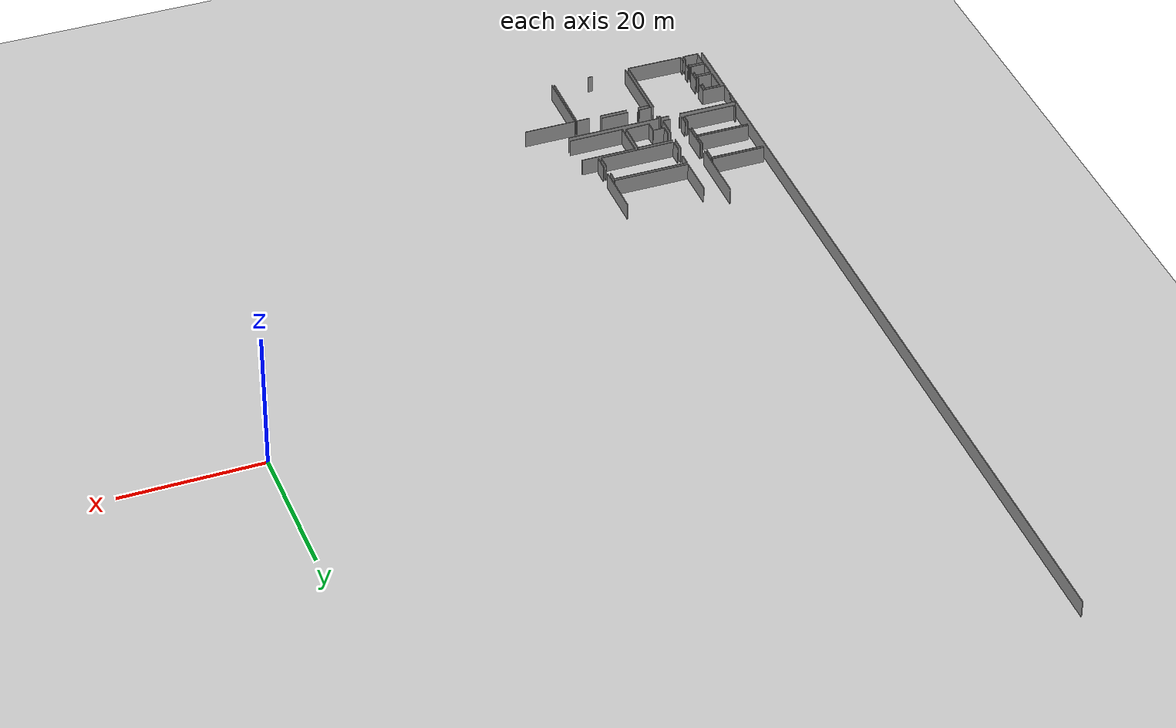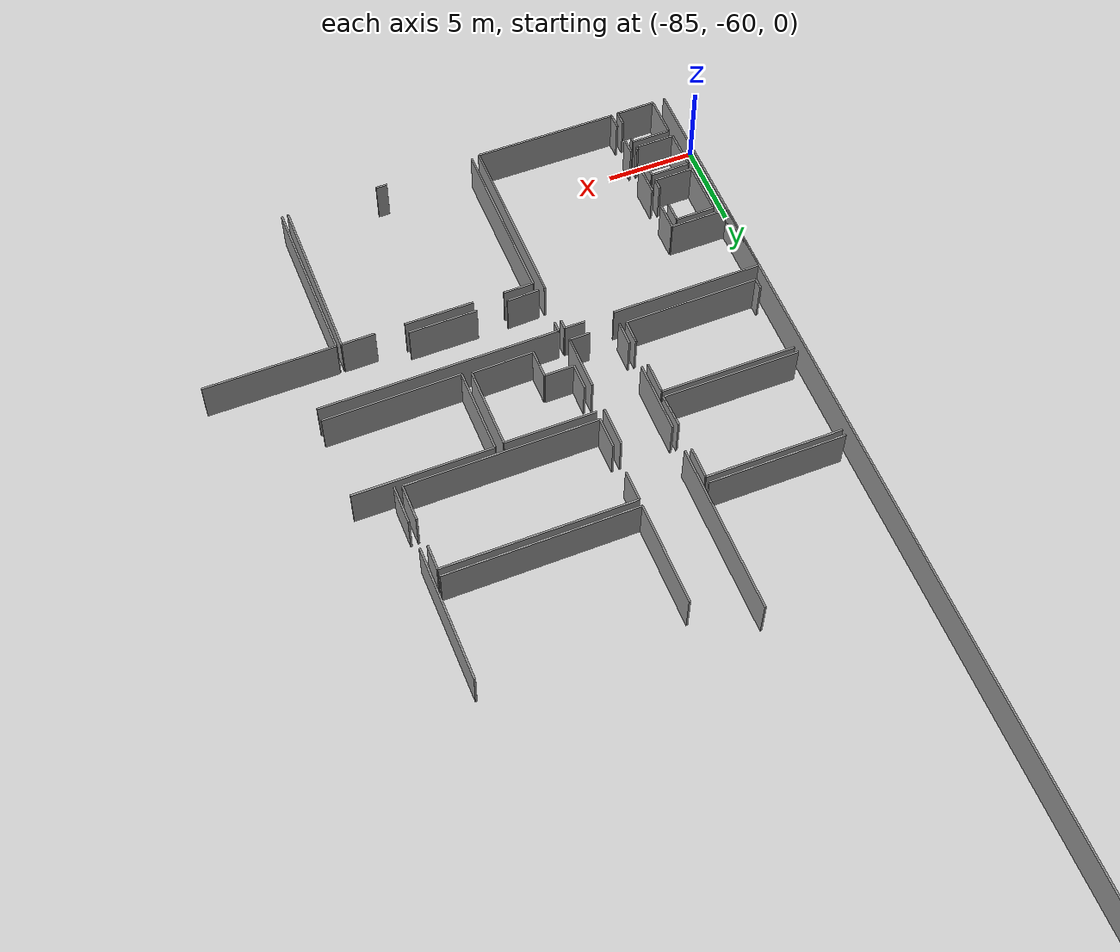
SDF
<sdf version="1.6">
 <world name="default">
  <model name="ground_plane">
   <static>1</static>
   <link name="link">
    <collision name="collision">
     <geometry><plane><normal>0 0 1</normal><size>100 100</size></plane></geometry>
     <surface><friction><ode><mu>100</mu><mu2>50</mu2></ode></friction></surface>
    </collision>
    <visual name="visual">
     <cast_shadows>0</cast_shadows>
     <geometry><plane><normal>0 0 1</normal><size>100 100</size></plane></geometry>
     <material>
      <script><uri>file://media/materials/scripts/gazebo.material</uri><name>Gazebo/Grey</name></script>
     </material>
    </visual>
   </link>
  </model>
  <model name="0510045904_A_40_1_102">
   <static>1</static>
   <link name="Wall_320">
    <collision name="Wall_320_Collision">
     <geometry><box><size>1.40160219381 0.1 2.5</size></box></geometry>
     <pose>0.700801096906 0 1.25 0 0 0</pose>
    </collision>
    <visual name="Wall_320_Visual">
     <pose>0.700801096906 0 1.25 0 0 0</pose>
     <geometry><box><size>1.40160219381 0.1 2.5</size></box></geometry>
     <material>
      <script><uri>file://media/materials/scripts/gazebo.material</uri><name>Gazebo/Grey</name></script>
      <ambient>1 1 1 1</ambient>
     </material>
    </visual>
    <pose>8.51447941397 -111.261061104 0 0 0 1.57079632679</pose>
   </link>
   <link name="Wall_321">
    <collision name="Wall_321_Collision">
     <geometry><box><size>4.06261505453 0.1 2.5</size></box></geometry>
     <pose>2.03130752726 0 1.25 0 0 0</pose>
    </collision>
    <visual name="Wall_321_Visual">
     <pose>2.03130752726 0 1.25 0 0 0</pose>
     <geometry><box><size>4.06261505453 0.1 2.5</size></box></geometry>
     <material>
      <script><uri>file://media/materials/scripts/gazebo.material</uri><name>Gazebo/Grey</name></script>
      <ambient>1 1 1 1</ambient>
     </material>
    </visual>
    <pose>8.51447941397 -108.253456397 0 0 0 1.57079632679</pose>
   </link>
   <link name="Wall_322">
    <collision name="Wall_322_Collision">
     <geometry><box><size>9.676641233 0.1 2.5</size></box></geometry>
     <pose>4.8383206165 0 1.25 0 0 0</pose>
    </collision>
    <visual name="Wall_322_Visual">
     <pose>4.8383206165 0 1.25 0 0 0</pose>
     <geometry><box><size>9.676641233 0.1 2.5</size></box></geometry>
     <material>
      <script><uri>file://media/materials/scripts/gazebo.material</uri><name>Gazebo/Grey</name></script>
      <ambient>1 1 1 1</ambient>
     </material>
    </visual>
    <pose>8.51447941397 -102.640445872 0 0 0 1.57079632679</pose>
   </link>
   <link name="Wall_326">
    <collision name="Wall_326_Collision">
     <geometry><box><size>2.26541571978 0.1 2.5</size></box></geometry>
     <pose>1.13270785989 0 1.25 0 0 0</pose>
    </collision>
    <visual name="Wall_326_Visual">
     <pose>1.13270785989 0 1.25 0 0 0</pose>
     <geometry><box><size>2.26541571978 0.1 2.5</size></box></geometry>
     <material>
      <script><uri>file://media/materials/scripts/gazebo.material</uri><name>Gazebo/Grey</name></script>
      <ambient>1 1 1 1</ambient>
     </material>
    </visual>
    <pose>11.3489151548 -104.253304049 0 0 0 -1.57079632679</pose>
   </link>
   <link name="Wall_327">
    <collision name="Wall_327_Collision">
     <geometry><box><size>3.13862404306 0.1 2.5</size></box></geometry>
     <pose>1.56931202153 0 1.25 0 0 0</pose>
    </collision>
    <visual name="Wall_327_Visual">
     <pose>1.56931202153 0 1.25 0 0 0</pose>
     <geometry><box><size>3.13862404306 0.1 2.5</size></box></geometry>
     <material>
      <script><uri>file://media/materials/scripts/gazebo.material</uri><name>Gazebo/Grey</name></script>
      <ambient>1 1 1 1</ambient>
     </material>
    </visual>
    <pose>11.3489151548 -108.112280524 0 0 0 -1.57079632679</pose>
   </link>
   <link name="Wall_328">
    <collision name="Wall_328_Collision">
     <geometry><box><size>1.14900321001 0.1 2.5</size></box></geometry>
     <pose>0.574501605003 0 1.25 0 0 0</pose>
    </collision>
    <visual name="Wall_328_Visual">
     <pose>0.574501605003 0 1.25 0 0 0</pose>
     <geometry><box><size>1.14900321001 0.1 2.5</size></box></geometry>
     <material>
      <script><uri>file://media/materials/scripts/gazebo.material</uri><name>Gazebo/Grey</name></script>
      <ambient>1 1 1 1</ambient>
     </material>
    </visual>
    <pose>11.3489151548 -111.250904567 0 0 0 -3.13275310483</pose>
   </link>
   <link name="Wall_329">
    <collision name="Wall_329_Collision">
     <geometry><box><size>7.67047113639 0.1 2.5</size></box></geometry>
     <pose>3.83523556819 0 1.25 0 0 0</pose>
    </collision>
    <visual name="Wall_329_Visual">
     <pose>3.83523556819 0 1.25 0 0 0</pose>
     <geometry><box><size>7.67047113639 0.1 2.5</size></box></geometry>
     <material>
      <script><uri>file://media/materials/scripts/gazebo.material</uri><name>Gazebo/Grey</name></script>
      <ambient>1 1 1 1</ambient>
     </material>
    </visual>
    <pose>8.14681275153 -100.485228586 0 0 0 3.14159265359</pose>
   </link>
   <link name="Wall_338">
    <collision name="Wall_338_Collision">
     <geometry><box><size>7.72760166059 0.1 2.5</size></box></geometry>
     <pose>3.8638008303 0 1.25 0 0 0</pose>
    </collision>
    <visual name="Wall_338_Visual">
     <pose>3.8638008303 0 1.25 0 0 0</pose>
     <geometry><box><size>7.72760166059 0.1 2.5</size></box></geometry>
     <material>
      <script><uri>file://media/materials/scripts/gazebo.material</uri><name>Gazebo/Grey</name></script>
      <ambient>1 1 1 1</ambient>
     </material>
    </visual>
    <pose>8.2260337451 -106.089606053 0 0 0 3.14159265359</pose>
   </link>
   <link name="Wall_339">
    <collision name="Wall_339_Collision">
     <geometry><box><size>7.65675981058 0.1 2.5</size></box></geometry>
     <pose>3.82837990529 0 1.25 0 0 0</pose>
    </collision>
    <visual name="Wall_339_Visual">
     <pose>3.82837990529 0 1.25 0 0 0</pose>
     <geometry><box><size>7.65675981058 0.1 2.5</size></box></geometry>
     <material>
      <script><uri>file://media/materials/scripts/gazebo.material</uri><name>Gazebo/Grey</name></script>
      <ambient>1 1 1 1</ambient>
     </material>
    </visual>
    <pose>0.498432084502 -100.837406528 0 0 0 0.0</pose>
   </link>
   <link name="Wall_340">
    <collision name="Wall_340_Collision">
     <geometry><box><size>1.80024629604 0.1 2.5</size></box></geometry>
     <pose>0.900123148019 0 1.25 0 0 0</pose>
    </collision>
    <visual name="Wall_340_Visual">
     <pose>0.900123148019 0 1.25 0 0 0</pose>
     <geometry><box><size>1.80024629604 0.1 2.5</size></box></geometry>
     <material>
      <script><uri>file://media/materials/scripts/gazebo.material</uri><name>Gazebo/Grey</name></script>
      <ambient>1 1 1 1</ambient>
     </material>
    </visual>
    <pose>8.15519189508 -100.837406528 0 0 0 -1.57079632679</pose>
   </link>
   <link name="Wall_341">
    <collision name="Wall_341_Collision">
     <geometry><box><size>1.87801085656 0.1 2.5</size></box></geometry>
     <pose>0.939005428281 0 1.25 0 0 0</pose>
    </collision>
    <visual name="Wall_341_Visual">
     <pose>0.939005428281 0 1.25 0 0 0</pose>
     <geometry><box><size>1.87801085656 0.1 2.5</size></box></geometry>
     <material>
      <script><uri>file://media/materials/scripts/gazebo.material</uri><name>Gazebo/Grey</name></script>
      <ambient>1 1 1 1</ambient>
     </material>
    </visual>
    <pose>8.15519189508 -104.212931812 0 0 0 -1.53306562836</pose>
   </link>
   <link name="Wall_342">
    <collision name="Wall_342_Collision">
     <geometry><box><size>0.617771401729 0.1 2.5</size></box></geometry>
     <pose>0.308885700865 0 1.25 0 0 0</pose>
    </collision>
    <visual name="Wall_342_Visual">
     <pose>0.308885700865 0 1.25 0 0 0</pose>
     <geometry><box><size>0.617771401729 0.1 2.5</size></box></geometry>
     <material>
      <script><uri>file://media/materials/scripts/gazebo.material</uri><name>Gazebo/Grey</name></script>
      <ambient>1 1 1 1</ambient>
     </material>
    </visual>
    <pose>0.567496540429 -111.228560184 0 0 0 1.57079632679</pose>
   </link>
   <link name="Wall_343">
    <collision name="Wall_343_Collision">
     <geometry><box><size>7.57957012454 0.1 2.5</size></box></geometry>
     <pose>3.78978506227 0 1.25 0 0 0</pose>
    </collision>
    <visual name="Wall_343_Visual">
     <pose>3.78978506227 0 1.25 0 0 0</pose>
     <geometry><box><size>7.57957012454 0.1 2.5</size></box></geometry>
     <material>
      <script><uri>file://media/materials/scripts/gazebo.material</uri><name>Gazebo/Grey</name></script>
      <ambient>1 1 1 1</ambient>
     </material>
    </visual>
    <pose>0.567496540429 -106.420201353 0 0 0 0.0</pose>
   </link>
   <link name="Wall_344">
    <collision name="Wall_344_Collision">
     <geometry><box><size>1.83655591809 0.1 2.5</size></box></geometry>
     <pose>0.918277959044 0 1.25 0 0 0</pose>
    </collision>
    <visual name="Wall_344_Visual">
     <pose>0.918277959044 0 1.25 0 0 0</pose>
     <geometry><box><size>1.83655591809 0.1 2.5</size></box></geometry>
     <material>
      <script><uri>file://media/materials/scripts/gazebo.material</uri><name>Gazebo/Grey</name></script>
      <ambient>1 1 1 1</ambient>
     </material>
    </visual>
    <pose>8.14706666497 -106.420201353 0 0 0 -1.57079632679</pose>
   </link>
   <link name="Wall_345">
    <collision name="Wall_345_Collision">
     <geometry><box><size>1.34828037122 0.1 2.5</size></box></geometry>
     <pose>0.674140185611 0 1.25 0 0 0</pose>
    </collision>
    <visual name="Wall_345_Visual">
     <pose>0.674140185611 0 1.25 0 0 0</pose>
     <geometry><box><size>1.34828037122 0.1 2.5</size></box></geometry>
     <material>
      <script><uri>file://media/materials/scripts/gazebo.material</uri><name>Gazebo/Grey</name></script>
      <ambient>1 1 1 1</ambient>
     </material>
    </visual>
    <pose>8.14706666497 -109.840161489 0 0 0 -1.57079632679</pose>
   </link>
   <link name="Wall_346">
    <collision name="Wall_346_Collision">
     <geometry><box><size>7.57967629604 0.1 2.5</size></box></geometry>
     <pose>3.78983814802 0 1.25 0 0 0</pose>
    </collision>
    <visual name="Wall_346_Visual">
     <pose>3.78983814802 0 1.25 0 0 0</pose>
     <geometry><box><size>7.57967629604 0.1 2.5</size></box></geometry>
     <material>
      <script><uri>file://media/materials/scripts/gazebo.material</uri><name>Gazebo/Grey</name></script>
      <ambient>1 1 1 1</ambient>
     </material>
    </visual>
    <pose>8.14706666497 -111.18844186 0 0 0 -3.13629974801</pose>
   </link>
   <link name="Wall_347">
    <collision name="Wall_347_Collision">
     <geometry><box><size>5.85092741884 0.1 2.5</size></box></geometry>
     <pose>2.92546370942 0 1.25 0 0 0</pose>
    </collision>
    <visual name="Wall_347_Visual">
     <pose>2.92546370942 0 1.25 0 0 0</pose>
     <geometry><box><size>5.85092741884 0.1 2.5</size></box></geometry>
     <material>
      <script><uri>file://media/materials/scripts/gazebo.material</uri><name>Gazebo/Grey</name></script>
      <ambient>1 1 1 1</ambient>
     </material>
    </visual>
    <pose>11.8029123872 -100.459329415 0 0 0 1.57079632679</pose>
   </link>
   <link name="Wall_352">
    <collision name="Wall_352_Collision">
     <geometry><box><size>10.7997090861 0.1 2.5</size></box></geometry>
     <pose>5.39985454305 0 1.25 0 0 0</pose>
    </collision>
    <visual name="Wall_352_Visual">
     <pose>5.39985454305 0 1.25 0 0 0</pose>
     <geometry><box><size>10.7997090861 0.1 2.5</size></box></geometry>
     <material>
      <script><uri>file://media/materials/scripts/gazebo.material</uri><name>Gazebo/Grey</name></script>
      <ambient>1 1 1 1</ambient>
     </material>
    </visual>
    <pose>22.6026127693 -100.445618089 0 0 0 -3.14032305185</pose>
   </link>
   <link name="Wall_353">
    <collision name="Wall_353_Collision">
     <geometry><box><size>1.78551931647 0.1 2.5</size></box></geometry>
     <pose>0.892759658233 0 1.25 0 0 0</pose>
    </collision>
    <visual name="Wall_353_Visual">
     <pose>0.892759658233 0 1.25 0 0 0</pose>
     <geometry><box><size>1.78551931647 0.1 2.5</size></box></geometry>
     <material>
      <script><uri>file://media/materials/scripts/gazebo.material</uri><name>Gazebo/Grey</name></script>
      <ambient>1 1 1 1</ambient>
     </material>
    </visual>
    <pose>11.7935175899 -106.019525944 0 0 0 1.57079632679</pose>
   </link>
   <link name="Wall_354">
    <collision name="Wall_354_Collision">
     <geometry><box><size>1.72229486968 0.1 2.5</size></box></geometry>
     <pose>0.861147434839 0 1.25 0 0 0</pose>
    </collision>
    <visual name="Wall_354_Visual">
     <pose>0.861147434839 0 1.25 0 0 0</pose>
     <geometry><box><size>1.72229486968 0.1 2.5</size></box></geometry>
     <material>
      <script><uri>file://media/materials/scripts/gazebo.material</uri><name>Gazebo/Grey</name></script>
      <ambient>1 1 1 1</ambient>
     </material>
    </visual>
    <pose>11.7935175899 -102.578998819 0 0 0 1.57079632679</pose>
   </link>
   <link name="Wall_355">
    <collision name="Wall_355_Collision">
     <geometry><box><size>10.7783716531 0.1 2.5</size></box></geometry>
     <pose>5.38918582655 0 1.25 0 0 0</pose>
    </collision>
    <visual name="Wall_355_Visual">
     <pose>5.38918582655 0 1.25 0 0 0</pose>
     <geometry><box><size>10.7783716531 0.1 2.5</size></box></geometry>
     <material>
      <script><uri>file://media/materials/scripts/gazebo.material</uri><name>Gazebo/Grey</name></script>
      <ambient>1 1 1 1</ambient>
     </material>
    </visual>
    <pose>11.7935175899 -100.85670395 0 0 0 0.0</pose>
   </link>
   <link name="Wall_356">
    <collision name="Wall_356_Collision">
     <geometry><box><size>1.42318483629 0.1 2.5</size></box></geometry>
     <pose>0.711592418145 0 1.25 0 0 0</pose>
    </collision>
    <visual name="Wall_356_Visual">
     <pose>0.711592418145 0 1.25 0 0 0</pose>
     <geometry><box><size>1.42318483629 0.1 2.5</size></box></geometry>
     <material>
      <script><uri>file://media/materials/scripts/gazebo.material</uri><name>Gazebo/Grey</name></script>
      <ambient>1 1 1 1</ambient>
     </material>
    </visual>
    <pose>22.571889243 -100.85670395 0 0 0 -1.57079632679</pose>
   </link>
   <link name="Wall_357">
    <collision name="Wall_357_Collision">
     <geometry><box><size>2.10341894448 0.1 2.5</size></box></geometry>
     <pose>1.05170947224 0 1.25 0 0 0</pose>
    </collision>
    <visual name="Wall_357_Visual">
     <pose>1.05170947224 0 1.25 0 0 0</pose>
     <geometry><box><size>2.10341894448 0.1 2.5</size></box></geometry>
     <material>
      <script><uri>file://media/materials/scripts/gazebo.material</uri><name>Gazebo/Grey</name></script>
      <ambient>1 1 1 1</ambient>
     </material>
    </visual>
    <pose>22.571889243 -103.899348712 0 0 0 -1.57079632679</pose>
   </link>
   <link name="Wall_358">
    <collision name="Wall_358_Collision">
     <geometry><box><size>10.778384681 0.1 2.5</size></box></geometry>
     <pose>5.38919234052 0 1.25 0 0 0</pose>
    </collision>
    <visual name="Wall_358_Visual">
     <pose>5.38919234052 0 1.25 0 0 0</pose>
     <geometry><box><size>10.778384681 0.1 2.5</size></box></geometry>
     <material>
      <script><uri>file://media/materials/scripts/gazebo.material</uri><name>Gazebo/Grey</name></script>
      <ambient>1 1 1 1</ambient>
     </material>
    </visual>
    <pose>22.571889243 -106.002767657 0 0 0 -3.1400378479</pose>
   </link>
   <link name="Wall_359">
    <collision name="Wall_359_Collision">
     <geometry><box><size>1.61361991697 0.1 2.5</size></box></geometry>
     <pose>0.806809958485 0 1.25 0 0 0</pose>
    </collision>
    <visual name="Wall_359_Visual">
     <pose>0.806809958485 0 1.25 0 0 0</pose>
     <geometry><box><size>1.61361991697 0.1 2.5</size></box></geometry>
     <material>
      <script><uri>file://media/materials/scripts/gazebo.material</uri><name>Gazebo/Grey</name></script>
      <ambient>1 1 1 1</ambient>
     </material>
    </visual>
    <pose>13.4363375525 -111.223481915 0 0 0 1.57079632679</pose>
   </link>
   <link name="Wall_360">
    <collision name="Wall_360_Collision">
     <geometry><box><size>1.66211738418 0.1 2.5</size></box></geometry>
     <pose>0.831058692092 0 1.25 0 0 0</pose>
    </collision>
    <visual name="Wall_360_Visual">
     <pose>0.831058692092 0 1.25 0 0 0</pose>
     <geometry><box><size>1.66211738418 0.1 2.5</size></box></geometry>
     <material>
      <script><uri>file://media/materials/scripts/gazebo.material</uri><name>Gazebo/Grey</name></script>
      <ambient>1 1 1 1</ambient>
     </material>
    </visual>
    <pose>13.4363375525 -109.609861998 0 0 0 3.14159265359</pose>
   </link>
   <link name="Wall_361">
    <collision name="Wall_361_Collision">
     <geometry><box><size>1.47828405297 0.1 2.5</size></box></geometry>
     <pose>0.739142026483 0 1.25 0 0 0</pose>
    </collision>
    <visual name="Wall_361_Visual">
     <pose>0.739142026483 0 1.25 0 0 0</pose>
     <geometry><box><size>1.47828405297 0.1 2.5</size></box></geometry>
     <material>
      <script><uri>file://media/materials/scripts/gazebo.material</uri><name>Gazebo/Grey</name></script>
      <ambient>1 1 1 1</ambient>
     </material>
    </visual>
    <pose>11.7742201683 -109.609861998 0 0 0 1.57079632679</pose>
   </link>
   <link name="Wall_362">
    <collision name="Wall_362_Collision">
     <geometry><box><size>5.12625845849 0.1 2.5</size></box></geometry>
     <pose>2.56312922925 0 1.25 0 0 0</pose>
    </collision>
    <visual name="Wall_362_Visual">
     <pose>2.56312922925 0 1.25 0 0 0</pose>
     <geometry><box><size>5.12625845849 0.1 2.5</size></box></geometry>
     <material>
      <script><uri>file://media/materials/scripts/gazebo.material</uri><name>Gazebo/Grey</name></script>
      <ambient>1 1 1 1</ambient>
     </material>
    </visual>
    <pose>11.7742201683 -106.518719768 0 0 0 0.0</pose>
   </link>
   <link name="Wall_363">
    <collision name="Wall_363_Collision">
     <geometry><box><size>4.64636205518 0.1 2.5</size></box></geometry>
     <pose>2.32318102759 0 1.25 0 0 0</pose>
    </collision>
    <visual name="Wall_363_Visual">
     <pose>2.32318102759 0 1.25 0 0 0</pose>
     <geometry><box><size>4.64636205518 0.1 2.5</size></box></geometry>
     <material>
      <script><uri>file://media/materials/scripts/gazebo.material</uri><name>Gazebo/Grey</name></script>
      <ambient>1 1 1 1</ambient>
     </material>
    </visual>
    <pose>16.9004786268 -106.518719768 0 0 0 -1.57079632679</pose>
   </link>
   <link name="Wall_364">
    <collision name="Wall_364_Collision">
     <geometry><box><size>3.4646333072 0.1 2.5</size></box></geometry>
     <pose>1.7323166536 0 1.25 0 0 0</pose>
    </collision>
    <visual name="Wall_364_Visual">
     <pose>1.7323166536 0 1.25 0 0 0</pose>
     <geometry><box><size>3.4646333072 0.1 2.5</size></box></geometry>
     <material>
      <script><uri>file://media/materials/scripts/gazebo.material</uri><name>Gazebo/Grey</name></script>
      <ambient>1 1 1 1</ambient>
     </material>
    </visual>
    <pose>16.9004786268 -111.165081824 0 0 0 -3.1247357882</pose>
   </link>
   <link name="Wall_367">
    <collision name="Wall_367_Collision">
     <geometry><box><size>2.18162428428 0.1 2.5</size></box></geometry>
     <pose>1.09081214214 0 1.25 0 0 0</pose>
    </collision>
    <visual name="Wall_367_Visual">
     <pose>1.09081214214 0 1.25 0 0 0</pose>
     <geometry><box><size>2.18162428428 0.1 2.5</size></box></geometry>
     <material>
      <script><uri>file://media/materials/scripts/gazebo.material</uri><name>Gazebo/Grey</name></script>
      <ambient>1 1 1 1</ambient>
     </material>
    </visual>
    <pose>22.9847524979 -106.075894727 0 0 0 1.57079632679</pose>
   </link>
   <link name="Wall_368">
    <collision name="Wall_368_Collision">
     <geometry><box><size>7.70881206597 0.1 2.5</size></box></geometry>
     <pose>3.85440603298 0 1.25 0 0 0</pose>
    </collision>
    <visual name="Wall_368_Visual">
     <pose>3.85440603298 0 1.25 0 0 0</pose>
     <geometry><box><size>7.70881206597 0.1 2.5</size></box></geometry>
     <material>
      <script><uri>file://media/materials/scripts/gazebo.material</uri><name>Gazebo/Grey</name></script>
      <ambient>1 1 1 1</ambient>
     </material>
    </visual>
    <pose>22.9847524979 -102.288267929 0 0 0 1.57079632679</pose>
   </link>
   <link name="Wall_376">
    <collision name="Wall_376_Collision">
     <geometry><box><size>4.87716937296 0.1 2.5</size></box></geometry>
     <pose>2.43858468648 0 1.25 0 0 0</pose>
    </collision>
    <visual name="Wall_376_Visual">
     <pose>2.43858468648 0 1.25 0 0 0</pose>
     <geometry><box><size>4.87716937296 0.1 2.5</size></box></geometry>
     <material>
      <script><uri>file://media/materials/scripts/gazebo.material</uri><name>Gazebo/Grey</name></script>
      <ambient>1 1 1 1</ambient>
     </material>
    </visual>
    <pose>17.4149072581 -111.297878553 0 0 0 1.57079632679</pose>
   </link>
   <link name="Wall_377">
    <collision name="Wall_377_Collision">
     <geometry><box><size>7.7903182805 0.1 2.5</size></box></geometry>
     <pose>3.89515914025 0 1.25 0 0 0</pose>
    </collision>
    <visual name="Wall_377_Visual">
     <pose>3.89515914025 0 1.25 0 0 0</pose>
     <geometry><box><size>7.7903182805 0.1 2.5</size></box></geometry>
     <material>
      <script><uri>file://media/materials/scripts/gazebo.material</uri><name>Gazebo/Grey</name></script>
      <ambient>1 1 1 1</ambient>
     </material>
    </visual>
    <pose>17.4149072581 -106.42070918 0 0 0 0.0</pose>
   </link>
   <link name="Wall_381">
    <collision name="Wall_381_Collision">
     <geometry><box><size>7.7308522812 0.1 2.5</size></box></geometry>
     <pose>3.8654261406 0 1.25 0 0 0</pose>
    </collision>
    <visual name="Wall_381_Visual">
     <pose>3.8654261406 0 1.25 0 0 0</pose>
     <geometry><box><size>7.7308522812 0.1 2.5</size></box></geometry>
     <material>
      <script><uri>file://media/materials/scripts/gazebo.material</uri><name>Gazebo/Grey</name></script>
      <ambient>1 1 1 1</ambient>
     </material>
    </visual>
    <pose>25.14555588 -111.241763683 0 0 0 -3.13433402787</pose>
   </link>
   <link name="Wall_651">
    <collision name="Wall_651_Collision">
     <geometry><box><size>0.580700039357 0.1 2.5</size></box></geometry>
     <pose>0.290350019678 0 1.25 0 0 0</pose>
    </collision>
    <visual name="Wall_651_Visual">
     <pose>0.290350019678 0 1.25 0 0 0</pose>
     <geometry><box><size>0.580700039357 0.1 2.5</size></box></geometry>
     <material>
      <script><uri>file://media/materials/scripts/gazebo.material</uri><name>Gazebo/Grey</name></script>
      <ambient>1 1 1 1</ambient>
     </material>
    </visual>
    <pose>11.6828113296 -112.582172737 0 0 0 1.57079632679</pose>
   </link>
   <link name="Wall_652">
    <collision name="Wall_652_Collision">
     <geometry><box><size>13.4434471289 0.1 2.5</size></box></geometry>
     <pose>6.72172356444 0 1.25 0 0 0</pose>
    </collision>
    <visual name="Wall_652_Visual">
     <pose>6.72172356444 0 1.25 0 0 0</pose>
     <geometry><box><size>13.4434471289 0.1 2.5</size></box></geometry>
     <material>
      <script><uri>file://media/materials/scripts/gazebo.material</uri><name>Gazebo/Grey</name></script>
      <ambient>1 1 1 1</ambient>
     </material>
    </visual>
    <pose>11.6828113296 -112.001472698 0 0 0 0.0</pose>
   </link>
   <link name="Wall_682">
    <collision name="Wall_682_Collision">
     <geometry><box><size>3.85669125395 0.1 2.5</size></box></geometry>
     <pose>1.92834562698 0 1.25 0 0 0</pose>
    </collision>
    <visual name="Wall_682_Visual">
     <pose>1.92834562698 0 1.25 0 0 0</pose>
     <geometry><box><size>3.85669125395 0.1 2.5</size></box></geometry>
     <material>
      <script><uri>file://media/materials/scripts/gazebo.material</uri><name>Gazebo/Grey</name></script>
      <ambient>1 1 1 1</ambient>
     </material>
    </visual>
    <pose>19.082610738 -114.833115391 0 0 0 3.14159265359</pose>
   </link>
   <link name="Wall_683">
    <collision name="Wall_683_Collision">
     <geometry><box><size>1.82450898326 0.1 2.5</size></box></geometry>
     <pose>0.912254491629 0 1.25 0 0 0</pose>
    </collision>
    <visual name="Wall_683_Visual">
     <pose>0.912254491629 0 1.25 0 0 0</pose>
     <geometry><box><size>1.82450898326 0.1 2.5</size></box></geometry>
     <material>
      <script><uri>file://media/materials/scripts/gazebo.material</uri><name>Gazebo/Grey</name></script>
      <ambient>1 1 1 1</ambient>
     </material>
    </visual>
    <pose>13.5064176622 -114.833115391 0 0 0 -3.11013547611</pose>
   </link>
   <link name="Wall_708">
    <collision name="Wall_708_Collision">
     <geometry><box><size>9.97879822768 0.1 2.5</size></box></geometry>
     <pose>4.98939911384 0 1.25 0 0 0</pose>
    </collision>
    <visual name="Wall_708_Visual">
     <pose>4.98939911384 0 1.25 0 0 0</pose>
     <geometry><box><size>9.97879822768 0.1 2.5</size></box></geometry>
     <material>
      <script><uri>file://media/materials/scripts/gazebo.material</uri><name>Gazebo/Grey</name></script>
      <ambient>1 1 1 1</ambient>
     </material>
    </visual>
    <pose>11.3161603209 -124.872598931 0 0 0 1.57079632679</pose>
   </link>
   <link name="Wall_709">
    <collision name="Wall_709_Collision">
     <geometry><box><size>0.52560082268 0.1 2.5</size></box></geometry>
     <pose>0.26280041134 0 1.25 0 0 0</pose>
    </collision>
    <visual name="Wall_709_Visual">
     <pose>0.26280041134 0 1.25 0 0 0</pose>
     <geometry><box><size>0.52560082268 0.1 2.5</size></box></geometry>
     <material>
      <script><uri>file://media/materials/scripts/gazebo.material</uri><name>Gazebo/Grey</name></script>
      <ambient>1 1 1 1</ambient>
     </material>
    </visual>
    <pose>11.3161603209 -112.566684017 0 0 0 1.57079632679</pose>
   </link>
   <link name="Wall_710">
    <collision name="Wall_710_Collision">
     <geometry><box><size>1.15022788731 0.1 2.5</size></box></geometry>
     <pose>0.575113943657 0 1.25 0 0 0</pose>
    </collision>
    <visual name="Wall_710_Visual">
     <pose>0.575113943657 0 1.25 0 0 0</pose>
     <geometry><box><size>1.15022788731 0.1 2.5</size></box></geometry>
     <material>
      <script><uri>file://media/materials/scripts/gazebo.material</uri><name>Gazebo/Grey</name></script>
      <ambient>1 1 1 1</ambient>
     </material>
    </visual>
    <pose>11.3161603209 -112.041083195 0 0 0 3.14159265359</pose>
   </link>
   <link name="Wall_711">
    <collision name="Wall_711_Collision">
     <geometry><box><size>8.51447941397 0.1 2.5</size></box></geometry>
     <pose>4.25723970698 0 1.25 0 0 0</pose>
    </collision>
    <visual name="Wall_711_Visual">
     <pose>4.25723970698 0 1.25 0 0 0</pose>
     <geometry><box><size>8.51447941397 0.1 2.5</size></box></geometry>
     <material>
      <script><uri>file://media/materials/scripts/gazebo.material</uri><name>Gazebo/Grey</name></script>
      <ambient>1 1 1 1</ambient>
     </material>
    </visual>
    <pose>8.51447941397 -112.041083195 0 0 0 3.14159265359</pose>
   </link>
   <link name="Wall_712">
    <collision name="Wall_712_Collision">
     <geometry><box><size>4.16265695025 0.1 2.5</size></box></geometry>
     <pose>2.08132847512 0 1.25 0 0 0</pose>
    </collision>
    <visual name="Wall_712_Visual">
     <pose>2.08132847512 0 1.25 0 0 0</pose>
     <geometry><box><size>4.16265695025 0.1 2.5</size></box></geometry>
     <material>
      <script><uri>file://media/materials/scripts/gazebo.material</uri><name>Gazebo/Grey</name></script>
      <ambient>1 1 1 1</ambient>
     </material>
    </visual>
    <pose>0.0 -112.041083195 0 0 0 -1.57079632679</pose>
   </link>
   <link name="Wall_713">
    <collision name="Wall_713_Collision">
     <geometry><box><size>3.28894080008 0.1 2.5</size></box></geometry>
     <pose>1.64447040004 0 1.25 0 0 0</pose>
    </collision>
    <visual name="Wall_713_Visual">
     <pose>1.64447040004 0 1.25 0 0 0</pose>
     <geometry><box><size>3.28894080008 0.1 2.5</size></box></geometry>
     <material>
      <script><uri>file://media/materials/scripts/gazebo.material</uri><name>Gazebo/Grey</name></script>
      <ambient>1 1 1 1</ambient>
     </material>
    </visual>
    <pose>0.0 -116.203740145 0 0 0 0.0</pose>
   </link>
   <link name="Wall_714">
    <collision name="Wall_714_Collision">
     <geometry><box><size>1.53592240405 0.1 2.5</size></box></geometry>
     <pose>0.767961202026 0 1.25 0 0 0</pose>
    </collision>
    <visual name="Wall_714_Visual">
     <pose>0.767961202026 0 1.25 0 0 0</pose>
     <geometry><box><size>1.53592240405 0.1 2.5</size></box></geometry>
     <material>
      <script><uri>file://media/materials/scripts/gazebo.material</uri><name>Gazebo/Grey</name></script>
      <ambient>1 1 1 1</ambient>
     </material>
    </visual>
    <pose>3.28894080008 -116.203740145 0 0 0 -1.57079632679</pose>
   </link>
   <link name="Wall_715">
    <collision name="Wall_715_Collision">
     <geometry><box><size>1.84315766755 0.1 2.5</size></box></geometry>
     <pose>0.921578833776 0 1.25 0 0 0</pose>
    </collision>
    <visual name="Wall_715_Visual">
     <pose>0.921578833776 0 1.25 0 0 0</pose>
     <geometry><box><size>1.84315766755 0.1 2.5</size></box></geometry>
     <material>
      <script><uri>file://media/materials/scripts/gazebo.material</uri><name>Gazebo/Grey</name></script>
      <ambient>1 1 1 1</ambient>
     </material>
    </visual>
    <pose>3.28894080008 -118.926453972 0 0 0 -1.57079632679</pose>
   </link>
   <link name="Wall_716">
    <collision name="Wall_716_Collision">
     <geometry><box><size>0.929069280282 0.1 2.5</size></box></geometry>
     <pose>0.464534640141 0 1.25 0 0 0</pose>
    </collision>
    <visual name="Wall_716_Visual">
     <pose>0.464534640141 0 1.25 0 0 0</pose>
     <geometry><box><size>0.929069280282 0.1 2.5</size></box></geometry>
     <material>
      <script><uri>file://media/materials/scripts/gazebo.material</uri><name>Gazebo/Grey</name></script>
      <ambient>1 1 1 1</ambient>
     </material>
    </visual>
    <pose>3.28894080008 -121.931519545 0 0 0 -1.57079632679</pose>
   </link>
   <link name="Wall_717">
    <collision name="Wall_717_Collision">
     <geometry><box><size>0.833089999619 0.1 2.5</size></box></geometry>
     <pose>0.41654499981 0 1.25 0 0 0</pose>
    </collision>
    <visual name="Wall_717_Visual">
     <pose>0.41654499981 0 1.25 0 0 0</pose>
     <geometry><box><size>0.833089999619 0.1 2.5</size></box></geometry>
     <material>
      <script><uri>file://media/materials/scripts/gazebo.material</uri><name>Gazebo/Grey</name></script>
      <ambient>1 1 1 1</ambient>
     </material>
    </visual>
    <pose>3.28894080008 -123.976030571 0 0 0 -1.57079632679</pose>
   </link>
   <link name="Wall_718">
    <collision name="Wall_718_Collision">
     <geometry><box><size>8.02747050685 0.1 2.5</size></box></geometry>
     <pose>4.01373525343 0 1.25 0 0 0</pose>
    </collision>
    <visual name="Wall_718_Visual">
     <pose>4.01373525343 0 1.25 0 0 0</pose>
     <geometry><box><size>8.02747050685 0.1 2.5</size></box></geometry>
     <material>
      <script><uri>file://media/materials/scripts/gazebo.material</uri><name>Gazebo/Grey</name></script>
      <ambient>1 1 1 1</ambient>
     </material>
    </visual>
    <pose>3.28894080008 -124.809120571 0 0 0 -0.00790772407699</pose>
   </link>
   <link name="Wall_719">
    <collision name="Wall_719_Collision">
     <geometry><box><size>2.98856119949 0.1 2.5</size></box></geometry>
     <pose>1.49428059974 0 1.25 0 0 0</pose>
    </collision>
    <visual name="Wall_719_Visual">
     <pose>1.49428059974 0 1.25 0 0 0</pose>
     <geometry><box><size>2.98856119949 0.1 2.5</size></box></geometry>
     <material>
      <script><uri>file://media/materials/scripts/gazebo.material</uri><name>Gazebo/Grey</name></script>
      <ambient>1 1 1 1</ambient>
     </material>
    </visual>
    <pose>0.651034062488 -119.55946018 0 0 0 1.57079632679</pose>
   </link>
   <link name="Wall_720">
    <collision name="Wall_720_Collision">
     <geometry><box><size>2.20371475364 0.1 2.5</size></box></geometry>
     <pose>1.10185737682 0 1.25 0 0 0</pose>
    </collision>
    <visual name="Wall_720_Visual">
     <pose>1.10185737682 0 1.25 0 0 0</pose>
     <geometry><box><size>2.20371475364 0.1 2.5</size></box></geometry>
     <material>
      <script><uri>file://media/materials/scripts/gazebo.material</uri><name>Gazebo/Grey</name></script>
      <ambient>1 1 1 1</ambient>
     </material>
    </visual>
    <pose>0.651034062488 -116.570898981 0 0 0 0.0</pose>
   </link>
   <link name="Wall_721">
    <collision name="Wall_721_Collision">
     <geometry><box><size>1.1352469943 0.1 2.5</size></box></geometry>
     <pose>0.56762349715 0 1.25 0 0 0</pose>
    </collision>
    <visual name="Wall_721_Visual">
     <pose>0.56762349715 0 1.25 0 0 0</pose>
     <geometry><box><size>1.1352469943 0.1 2.5</size></box></geometry>
     <material>
      <script><uri>file://media/materials/scripts/gazebo.material</uri><name>Gazebo/Grey</name></script>
      <ambient>1 1 1 1</ambient>
     </material>
    </visual>
    <pose>2.85474881613 -116.570898981 0 0 0 -1.57079632679</pose>
   </link>
   <link name="Wall_722">
    <collision name="Wall_722_Collision">
     <geometry><box><size>0.64036969797 0.1 2.5</size></box></geometry>
     <pose>0.320184848985 0 1.25 0 0 0</pose>
    </collision>
    <visual name="Wall_722_Visual">
     <pose>0.320184848985 0 1.25 0 0 0</pose>
     <geometry><box><size>0.64036969797 0.1 2.5</size></box></geometry>
     <material>
      <script><uri>file://media/materials/scripts/gazebo.material</uri><name>Gazebo/Grey</name></script>
      <ambient>1 1 1 1</ambient>
     </material>
    </visual>
    <pose>2.85474881613 -118.917820915 0 0 0 -1.57079632679</pose>
   </link>
   <link name="Wall_723">
    <collision name="Wall_723_Collision">
     <geometry><box><size>2.20371511934 0.1 2.5</size></box></geometry>
     <pose>1.10185755967 0 1.25 0 0 0</pose>
    </collision>
    <visual name="Wall_723_Visual">
     <pose>1.10185755967 0 1.25 0 0 0</pose>
     <geometry><box><size>2.20371511934 0.1 2.5</size></box></geometry>
     <material>
      <script><uri>file://media/materials/scripts/gazebo.material</uri><name>Gazebo/Grey</name></script>
      <ambient>1 1 1 1</ambient>
     </material>
    </visual>
    <pose>2.85474881613 -119.558190613 0 0 0 -3.14101655042</pose>
   </link>
   <link name="Wall_724">
    <collision name="Wall_724_Collision">
     <geometry><box><size>0.197798570467 0.1 2.5</size></box></geometry>
     <pose>0.0988992852337 0 1.25 0 0 0</pose>
    </collision>
    <visual name="Wall_724_Visual">
     <pose>0.0988992852337 0 1.25 0 0 0</pose>
     <geometry><box><size>0.197798570467 0.1 2.5</size></box></geometry>
     <material>
      <script><uri>file://media/materials/scripts/gazebo.material</uri><name>Gazebo/Grey</name></script>
      <ambient>1 1 1 1</ambient>
     </material>
    </visual>
    <pose>2.87988624678 -122.158264248 0 0 0 1.57079632679</pose>
   </link>
   <link name="Wall_725">
    <collision name="Wall_725_Collision">
     <geometry><box><size>0.842230883492 0.1 2.5</size></box></geometry>
     <pose>0.421115441746 0 1.25 0 0 0</pose>
    </collision>
    <visual name="Wall_725_Visual">
     <pose>0.421115441746 0 1.25 0 0 0</pose>
     <geometry><box><size>0.842230883492 0.1 2.5</size></box></geometry>
     <material>
      <script><uri>file://media/materials/scripts/gazebo.material</uri><name>Gazebo/Grey</name></script>
      <ambient>1 1 1 1</ambient>
     </material>
    </visual>
    <pose>2.87988624678 -120.813792578 0 0 0 1.57079632679</pose>
   </link>
   <link name="Wall_726">
    <collision name="Wall_726_Collision">
     <geometry><box><size>2.2159025988 0.1 2.5</size></box></geometry>
     <pose>1.1079512994 0 1.25 0 0 0</pose>
    </collision>
    <visual name="Wall_726_Visual">
     <pose>1.1079512994 0 1.25 0 0 0</pose>
     <geometry><box><size>2.2159025988 0.1 2.5</size></box></geometry>
     <material>
      <script><uri>file://media/materials/scripts/gazebo.material</uri><name>Gazebo/Grey</name></script>
      <ambient>1 1 1 1</ambient>
     </material>
    </visual>
    <pose>2.87988624678 -119.971561695 0 0 0 3.14159265359</pose>
   </link>
   <link name="Wall_727">
    <collision name="Wall_727_Collision">
     <geometry><box><size>2.1922886488 0.1 2.5</size></box></geometry>
     <pose>1.0961443244 0 1.25 0 0 0</pose>
    </collision>
    <visual name="Wall_727_Visual">
     <pose>1.0961443244 0 1.25 0 0 0</pose>
     <geometry><box><size>2.1922886488 0.1 2.5</size></box></geometry>
     <material>
      <script><uri>file://media/materials/scripts/gazebo.material</uri><name>Gazebo/Grey</name></script>
      <ambient>1 1 1 1</ambient>
     </material>
    </visual>
    <pose>0.663983647974 -119.971561695 0 0 0 -1.57079632679</pose>
   </link>
   <link name="Wall_728">
    <collision name="Wall_728_Collision">
     <geometry><box><size>2.21590963982 0.1 2.5</size></box></geometry>
     <pose>1.10795481991 0 1.25 0 0 0</pose>
    </collision>
    <visual name="Wall_728_Visual">
     <pose>1.10795481991 0 1.25 0 0 0</pose>
     <geometry><box><size>2.21590963982 0.1 2.5</size></box></geometry>
     <material>
      <script><uri>file://media/materials/scripts/gazebo.material</uri><name>Gazebo/Grey</name></script>
      <ambient>1 1 1 1</ambient>
     </material>
    </visual>
    <pose>0.663983647974 -122.163850343 0 0 0 0.00252090677172</pose>
   </link>
   <link name="Wall_729">
    <collision name="Wall_729_Collision">
     <geometry><box><size>0.807952568969 0.1 2.5</size></box></geometry>
     <pose>0.403976284485 0 1.25 0 0 0</pose>
    </collision>
    <visual name="Wall_729_Visual">
     <pose>0.403976284485 0 1.25 0 0 0</pose>
     <geometry><box><size>0.807952568969 0.1 2.5</size></box></geometry>
     <material>
      <script><uri>file://media/materials/scripts/gazebo.material</uri><name>Gazebo/Grey</name></script>
      <ambient>1 1 1 1</ambient>
     </material>
    </visual>
    <pose>2.9029923699 -124.846953673 0 0 0 1.57079632679</pose>
   </link>
   <link name="Wall_730">
    <collision name="Wall_730_Collision">
     <geometry><box><size>0.300379600594 0.1 2.5</size></box></geometry>
     <pose>0.150189800297 0 1.25 0 0 0</pose>
    </collision>
    <visual name="Wall_730_Visual">
     <pose>0.150189800297 0 1.25 0 0 0</pose>
     <geometry><box><size>0.300379600594 0.1 2.5</size></box></geometry>
     <material>
      <script><uri>file://media/materials/scripts/gazebo.material</uri><name>Gazebo/Grey</name></script>
      <ambient>1 1 1 1</ambient>
     </material>
    </visual>
    <pose>2.9029923699 -122.881663641 0 0 0 1.57079632679</pose>
   </link>
   <link name="Wall_731">
    <collision name="Wall_731_Collision">
     <geometry><box><size>2.18517907245 0.1 2.5</size></box></geometry>
     <pose>1.09258953623 0 1.25 0 0 0</pose>
    </collision>
    <visual name="Wall_731_Visual">
     <pose>1.09258953623 0 1.25 0 0 0</pose>
     <geometry><box><size>2.18517907245 0.1 2.5</size></box></geometry>
     <material>
      <script><uri>file://media/materials/scripts/gazebo.material</uri><name>Gazebo/Grey</name></script>
      <ambient>1 1 1 1</ambient>
     </material>
    </visual>
    <pose>2.9029923699 -122.58128404 0 0 0 3.14159265359</pose>
   </link>
   <link name="Wall_732">
    <collision name="Wall_732_Collision">
     <geometry><box><size>2.2704939886 0.1 2.5</size></box></geometry>
     <pose>1.1352469943 0 1.25 0 0 0</pose>
    </collision>
    <visual name="Wall_732_Visual">
     <pose>1.1352469943 0 1.25 0 0 0</pose>
     <geometry><box><size>2.2704939886 0.1 2.5</size></box></geometry>
     <material>
      <script><uri>file://media/materials/scripts/gazebo.material</uri><name>Gazebo/Grey</name></script>
      <ambient>1 1 1 1</ambient>
     </material>
    </visual>
    <pose>0.717813297447 -122.58128404 0 0 0 -1.57079632679</pose>
   </link>
   <link name="Wall_733">
    <collision name="Wall_733_Collision">
     <geometry><box><size>2.18518439796 0.1 2.5</size></box></geometry>
     <pose>1.09259219898 0 1.25 0 0 0</pose>
    </collision>
    <visual name="Wall_733_Visual">
     <pose>1.09259219898 0 1.25 0 0 0</pose>
     <geometry><box><size>2.18518439796 0.1 2.5</size></box></geometry>
     <material>
      <script><uri>file://media/materials/scripts/gazebo.material</uri><name>Gazebo/Grey</name></script>
      <ambient>1 1 1 1</ambient>
     </material>
    </visual>
    <pose>0.717813297447 -124.851778029 0 0 0 0.00220775843947</pose>
   </link>
   <link name="Wall_734">
    <collision name="Wall_734_Collision">
     <geometry><box><size>0.634529688829 0.1 2.5</size></box></geometry>
     <pose>0.317264844415 0 1.25 0 0 0</pose>
    </collision>
    <visual name="Wall_734_Visual">
     <pose>0.317264844415 0 1.25 0 0 0</pose>
     <geometry><box><size>0.634529688829 0.1 2.5</size></box></geometry>
     <material>
      <script><uri>file://media/materials/scripts/gazebo.material</uri><name>Gazebo/Grey</name></script>
      <ambient>1 1 1 1</ambient>
     </material>
    </visual>
    <pose>17.4631508119 -124.768240507 0 0 0 3.14159265359</pose>
   </link>
   <link name="Wall_735">
    <collision name="Wall_735_Collision">
     <geometry><box><size>9.3612807394 0.1 2.5</size></box></geometry>
     <pose>4.6806403697 0 1.25 0 0 0</pose>
    </collision>
    <visual name="Wall_735_Visual">
     <pose>4.6806403697 0 1.25 0 0 0</pose>
     <geometry><box><size>9.3612807394 0.1 2.5</size></box></geometry>
     <material>
      <script><uri>file://media/materials/scripts/gazebo.material</uri><name>Gazebo/Grey</name></script>
      <ambient>1 1 1 1</ambient>
     </material>
    </visual>
    <pose>11.7866619269 -124.768240507 0 0 0 1.57079632679</pose>
   </link>
   <link name="Wall_736">
    <collision name="Wall_736_Collision">
     <geometry><box><size>1.69741135247 0.1 2.5</size></box></geometry>
     <pose>0.848705676235 0 1.25 0 0 0</pose>
    </collision>
    <visual name="Wall_736_Visual">
     <pose>0.848705676235 0 1.25 0 0 0</pose>
     <geometry><box><size>1.69741135247 0.1 2.5</size></box></geometry>
     <material>
      <script><uri>file://media/materials/scripts/gazebo.material</uri><name>Gazebo/Grey</name></script>
      <ambient>1 1 1 1</ambient>
     </material>
    </visual>
    <pose>11.7866619269 -115.406959767 0 0 0 0.0</pose>
   </link>
   <link name="Wall_737">
    <collision name="Wall_737_Collision">
     <geometry><box><size>3.87827389643 0.1 2.5</size></box></geometry>
     <pose>1.93913694821 0 1.25 0 0 0</pose>
    </collision>
    <visual name="Wall_737_Visual">
     <pose>1.93913694821 0 1.25 0 0 0</pose>
     <geometry><box><size>3.87827389643 0.1 2.5</size></box></geometry>
     <material>
      <script><uri>file://media/materials/scripts/gazebo.material</uri><name>Gazebo/Grey</name></script>
      <ambient>1 1 1 1</ambient>
     </material>
    </visual>
    <pose>15.2302360125 -115.406959767 0 0 0 0.0</pose>
   </link>
   <link name="Wall_738">
    <collision name="Wall_738_Collision">
     <geometry><box><size>1.87667424175 0.1 2.5</size></box></geometry>
     <pose>0.938337120875 0 1.25 0 0 0</pose>
    </collision>
    <visual name="Wall_738_Visual">
     <pose>0.938337120875 0 1.25 0 0 0</pose>
     <geometry><box><size>1.87667424175 0.1 2.5</size></box></geometry>
     <material>
      <script><uri>file://media/materials/scripts/gazebo.material</uri><name>Gazebo/Grey</name></script>
      <ambient>1 1 1 1</ambient>
     </material>
    </visual>
    <pose>20.7673264184 -115.406959767 0 0 0 0.0</pose>
   </link>
   <link name="Wall_739">
    <collision name="Wall_739_Collision">
     <geometry><box><size>9.36155847807 0.1 2.5</size></box></geometry>
     <pose>4.68077923903 0 1.25 0 0 0</pose>
    </collision>
    <visual name="Wall_739_Visual">
     <pose>4.68077923903 0 1.25 0 0 0</pose>
     <geometry><box><size>9.36155847807 0.1 2.5</size></box></geometry>
     <material>
      <script><uri>file://media/materials/scripts/gazebo.material</uri><name>Gazebo/Grey</name></script>
      <ambient>1 1 1 1</ambient>
     </material>
    </visual>
    <pose>22.6440006602 -115.406959767 0 0 0 -1.57849933164</pose>
   </link>
   <link name="Wall_741">
    <collision name="Wall_741_Collision">
     <geometry><box><size>9.34706158671 0.1 2.5</size></box></geometry>
     <pose>4.67353079335 0 1.25 0 0 0</pose>
    </collision>
    <visual name="Wall_741_Visual">
     <pose>4.67353079335 0 1.25 0 0 0</pose>
     <geometry><box><size>9.34706158671 0.1 2.5</size></box></geometry>
     <material>
      <script><uri>file://media/materials/scripts/gazebo.material</uri><name>Gazebo/Grey</name></script>
      <ambient>1 1 1 1</ambient>
     </material>
    </visual>
    <pose>22.9245750124 -124.75148222 0 0 0 1.57079632679</pose>
   </link>
   <link name="Wall_742">
    <collision name="Wall_742_Collision">
     <geometry><box><size>7.38507242881 0.1 2.5</size></box></geometry>
     <pose>3.6925362144 0 1.25 0 0 0</pose>
    </collision>
    <visual name="Wall_742_Visual">
     <pose>3.6925362144 0 1.25 0 0 0</pose>
     <geometry><box><size>7.38507242881 0.1 2.5</size></box></geometry>
     <material>
      <script><uri>file://media/materials/scripts/gazebo.material</uri><name>Gazebo/Grey</name></script>
      <ambient>1 1 1 1</ambient>
     </material>
    </visual>
    <pose>22.9245750124 -115.404420633 0 0 0 0.0</pose>
   </link>
   <link name="Wall_819">
    <collision name="Wall_819_Collision">
     <geometry><box><size>124.897990275 0.1 2.5</size></box></geometry>
     <pose>62.4489951376 0 1.25 0 0 0</pose>
    </collision>
    <visual name="Wall_819_Visual">
     <pose>62.4489951376 0 1.25 0 0 0</pose>
     <geometry><box><size>124.897990275 0.1 2.5</size></box></geometry>
     <material>
      <script><uri>file://media/materials/scripts/gazebo.material</uri><name>Gazebo/Grey</name></script>
      <ambient>1 1 1 1</ambient>
     </material>
    </visual>
    <pose>0.0 -124.897990275 0 0 0 1.57079632679</pose>
   </link>
   <pose>-84.3 62.4479902751 0 0 0 0</pose>
  </model>
 </world>
</sdf>
